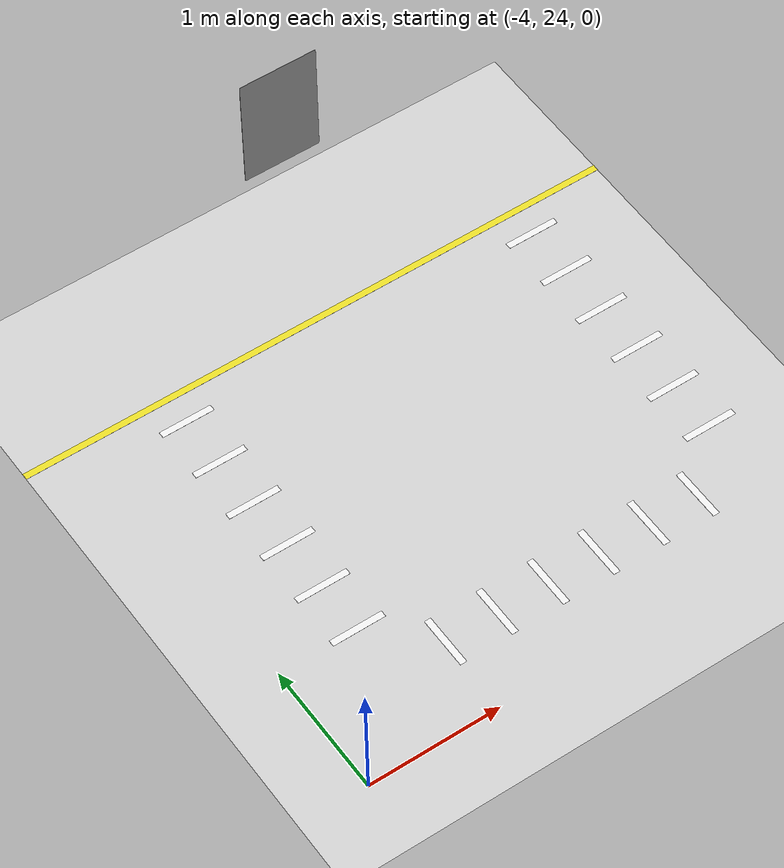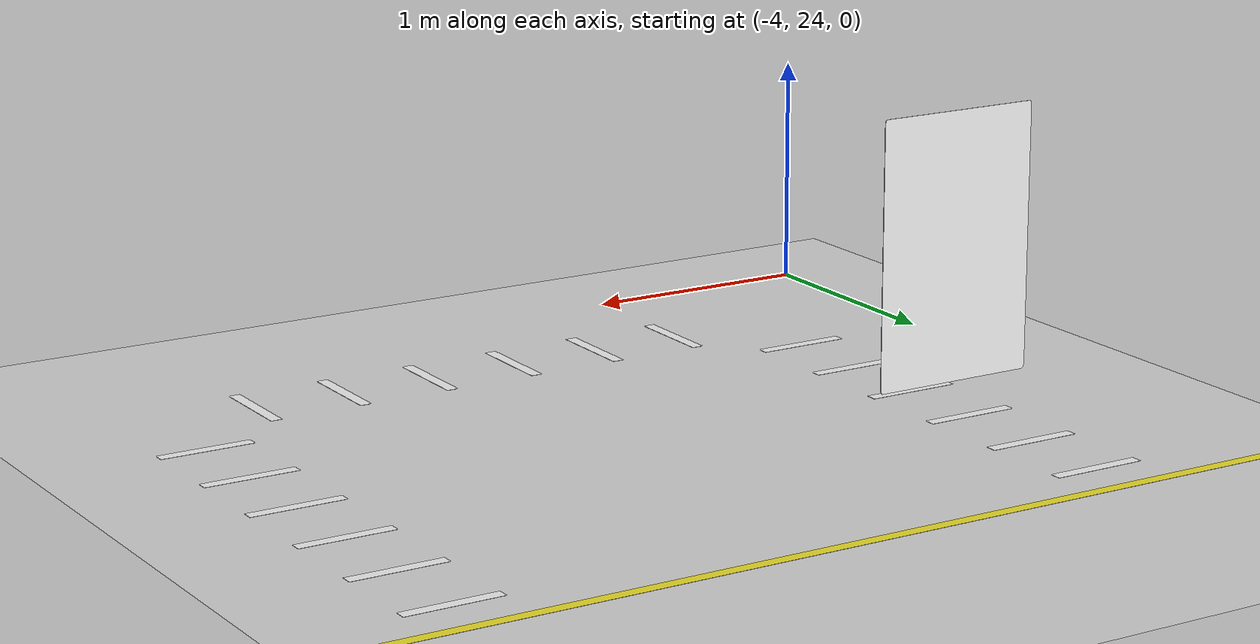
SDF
<sdf version="1.6">
 <world name="default">
  <model name="ground_plane">
   <static>1</static>
   <link name="link">
    <collision name="collision">
     <geometry><plane><normal>0 0 1</normal><size>100 100</size></plane></geometry>
     <surface><friction><ode><mu>100</mu><mu2>50</mu2></ode></friction></surface>
    </collision>
    <visual name="visual">
     <cast_shadows>0</cast_shadows>
     <geometry><plane><normal>0 0 1</normal><size>100 100</size></plane></geometry>
     <material>
      <script><uri>file://media/materials/scripts/gazebo.material</uri><name>Gazebo/Grey</name></script>
     </material>
    </visual>
   </link>
  </model>
  <model name="zebra_crossing_40cmx200cm_8">
   <link name="link_2">
    <inertial>
     <mass>1</mass>
     <inertia>
      <ixx>0.166667</ixx>
      <ixy>0</ixy>
      <ixz>0</ixz>
      <iyy>0.166667</iyy>
      <iyz>0</iyz>
      <izz>0.166667</izz>
     </inertia>
    </inertial>
    <visual name="ModelPreview_5::link_2::visual_1">
     <pose>-0.2 0 0 0 -0 0</pose>
     <geometry><box><size>0.05 0.4 0.001</size></box></geometry>
     <material>
      <lighting>1</lighting>
      <script><uri>file://media/materials/scripts/gazebo.material</uri><name>Gazebo/White</name></script>
     </material>
    </visual>
    <visual name="ModelPreview_5::link_2::visual_3">
     <pose>-0.6 0 0 0 -0 0</pose>
     <geometry><box><size>0.05 0.4 0.001</size></box></geometry>
     <material>
      <lighting>1</lighting>
      <script><uri>file://media/materials/scripts/gazebo.material</uri><name>Gazebo/White</name></script>
     </material>
    </visual>
    <visual name="ModelPreview_5::link_2::visual_4">
     <pose>1 0 0 0 -0 0</pose>
     <geometry><box><size>0.05 0.4 0.001</size></box></geometry>
     <material>
      <lighting>1</lighting>
      <script><uri>file://media/materials/scripts/gazebo.material</uri><name>Gazebo/White</name></script>
     </material>
    </visual>
    <visual name="visual">
     <pose>0.2 0 0 0 -0 0</pose>
     <geometry><box><size>0.05 0.4 0.001</size></box></geometry>
     <material>
      <lighting>1</lighting>
      <script><uri>file://media/materials/scripts/gazebo.material</uri><name>Gazebo/White</name></script>
     </material>
    </visual>
    <visual name="ModelPreview_5::link_2::visual_5">
     <pose>-1 0 0 0 -0 0</pose>
     <geometry><box><size>0.05 0.4 0.001</size></box></geometry>
     <material>
      <lighting>1</lighting>
      <script><uri>file://media/materials/scripts/gazebo.material</uri><name>Gazebo/White</name></script>
     </material>
    </visual>
    <visual name="ModelPreview_5::link_2::visual_2">
     <pose>0.6 0 0 0 -0 0</pose>
     <geometry><box><size>0.05 0.4 0.001</size></box></geometry>
     <material>
      <lighting>1</lighting>
      <script><uri>file://media/materials/scripts/gazebo.material</uri><name>Gazebo/White</name></script>
     </material>
    </visual>
    <collision name="collision_5">
     <pose>-1 0 0 0 -0 0</pose>
     <geometry><box><size>0.05 0.4 1e-05</size></box></geometry>
    </collision>
    <collision name="collision">
     <pose>0.2 0 0 0 -0 0</pose>
     <geometry><box><size>0.05 0.4 1e-05</size></box></geometry>
    </collision>
    <collision name="collision_3">
     <pose>-0.6 0 0 0 -0 0</pose>
     <geometry><box><size>0.05 0.4 1e-05</size></box></geometry>
    </collision>
    <collision name="collision_4">
     <pose>1 0 0 0 -0 0</pose>
     <geometry><box><size>0.05 0.4 1e-05</size></box></geometry>
    </collision>
    <collision name="collision_2">
     <pose>0.6 0 0 0 -0 0</pose>
     <geometry><box><size>0.05 0.4 1e-05</size></box></geometry>
    </collision>
    <collision name="collision_1">
     <pose>-0.2 0 0 0 -0 0</pose>
     <geometry><box><size>0.05 0.4 1e-05</size></box></geometry>
    </collision>
   </link>
   <static>1</static>
   <pose>-2 24.6 0 0 -0 0</pose>
  </model>
  <model name="zebra_crossing_40cmx200cm_14">
   <link name="link_2">
    <inertial>
     <mass>1</mass>
     <inertia>
      <ixx>0.166667</ixx>
      <ixy>0</ixy>
      <ixz>0</ixz>
      <iyy>0.166667</iyy>
      <iyz>0</iyz>
      <izz>0.166667</izz>
     </inertia>
    </inertial>
    <visual name="ModelPreview_5::link_2::visual_1">
     <pose>-0.2 0 0 0 -0 0</pose>
     <geometry><box><size>0.05 0.4 0.001</size></box></geometry>
     <material>
      <lighting>1</lighting>
      <script><uri>file://media/materials/scripts/gazebo.material</uri><name>Gazebo/White</name></script>
     </material>
    </visual>
    <visual name="ModelPreview_5::link_2::visual_3">
     <pose>-0.6 0 0 0 -0 0</pose>
     <geometry><box><size>0.05 0.4 0.001</size></box></geometry>
     <material>
      <lighting>1</lighting>
      <script><uri>file://media/materials/scripts/gazebo.material</uri><name>Gazebo/White</name></script>
     </material>
    </visual>
    <visual name="ModelPreview_5::link_2::visual_4">
     <pose>1 0 0 0 -0 0</pose>
     <geometry><box><size>0.05 0.4 0.001</size></box></geometry>
     <material>
      <lighting>1</lighting>
      <script><uri>file://media/materials/scripts/gazebo.material</uri><name>Gazebo/White</name></script>
     </material>
    </visual>
    <visual name="visual">
     <pose>0.2 0 0 0 -0 0</pose>
     <geometry><box><size>0.05 0.4 0.001</size></box></geometry>
     <material>
      <lighting>1</lighting>
      <script><uri>file://media/materials/scripts/gazebo.material</uri><name>Gazebo/White</name></script>
     </material>
    </visual>
    <visual name="ModelPreview_5::link_2::visual_5">
     <pose>-1 0 0 0 -0 0</pose>
     <geometry><box><size>0.05 0.4 0.001</size></box></geometry>
     <material>
      <lighting>1</lighting>
      <script><uri>file://media/materials/scripts/gazebo.material</uri><name>Gazebo/White</name></script>
     </material>
    </visual>
    <visual name="ModelPreview_5::link_2::visual_2">
     <pose>0.6 0 0 0 -0 0</pose>
     <geometry><box><size>0.05 0.4 0.001</size></box></geometry>
     <material>
      <lighting>1</lighting>
      <script><uri>file://media/materials/scripts/gazebo.material</uri><name>Gazebo/White</name></script>
     </material>
    </visual>
    <collision name="collision_5">
     <pose>-1 0 0 0 -0 0</pose>
     <geometry><box><size>0.05 0.4 1e-05</size></box></geometry>
    </collision>
    <collision name="collision">
     <pose>0.2 0 0 0 -0 0</pose>
     <geometry><box><size>0.05 0.4 1e-05</size></box></geometry>
    </collision>
    <collision name="collision_3">
     <pose>-0.6 0 0 0 -0 0</pose>
     <geometry><box><size>0.05 0.4 1e-05</size></box></geometry>
    </collision>
    <collision name="collision_4">
     <pose>1 0 0 0 -0 0</pose>
     <geometry><box><size>0.05 0.4 1e-05</size></box></geometry>
    </collision>
    <collision name="collision_2">
     <pose>0.6 0 0 0 -0 0</pose>
     <geometry><box><size>0.05 0.4 1e-05</size></box></geometry>
    </collision>
    <collision name="collision_1">
     <pose>-0.2 0 0 0 -0 0</pose>
     <geometry><box><size>0.05 0.4 1e-05</size></box></geometry>
    </collision>
   </link>
   <static>1</static>
   <pose>-0.6 26 0 0 -0 1.5708</pose>
  </model>
  <model name="zebra_crossing_40cmx200cm_15">
   <link name="link_2">
    <inertial>
     <mass>1</mass>
     <inertia>
      <ixx>0.166667</ixx>
      <ixy>0</ixy>
      <ixz>0</ixz>
      <iyy>0.166667</iyy>
      <iyz>0</iyz>
      <izz>0.166667</izz>
     </inertia>
    </inertial>
    <visual name="ModelPreview_5::link_2::visual_1">
     <pose>-0.2 0 0 0 -0 0</pose>
     <geometry><box><size>0.05 0.4 0.001</size></box></geometry>
     <material>
      <lighting>1</lighting>
      <script><uri>file://media/materials/scripts/gazebo.material</uri><name>Gazebo/White</name></script>
     </material>
    </visual>
    <visual name="ModelPreview_5::link_2::visual_3">
     <pose>-0.6 0 0 0 -0 0</pose>
     <geometry><box><size>0.05 0.4 0.001</size></box></geometry>
     <material>
      <lighting>1</lighting>
      <script><uri>file://media/materials/scripts/gazebo.material</uri><name>Gazebo/White</name></script>
     </material>
    </visual>
    <visual name="ModelPreview_5::link_2::visual_4">
     <pose>1 0 0 0 -0 0</pose>
     <geometry><box><size>0.05 0.4 0.001</size></box></geometry>
     <material>
      <lighting>1</lighting>
      <script><uri>file://media/materials/scripts/gazebo.material</uri><name>Gazebo/White</name></script>
     </material>
    </visual>
    <visual name="visual">
     <pose>0.2 0 0 0 -0 0</pose>
     <geometry><box><size>0.05 0.4 0.001</size></box></geometry>
     <material>
      <lighting>1</lighting>
      <script><uri>file://media/materials/scripts/gazebo.material</uri><name>Gazebo/White</name></script>
     </material>
    </visual>
    <visual name="ModelPreview_5::link_2::visual_5">
     <pose>-1 0 0 0 -0 0</pose>
     <geometry><box><size>0.05 0.4 0.001</size></box></geometry>
     <material>
      <lighting>1</lighting>
      <script><uri>file://media/materials/scripts/gazebo.material</uri><name>Gazebo/White</name></script>
     </material>
    </visual>
    <visual name="ModelPreview_5::link_2::visual_2">
     <pose>0.6 0 0 0 -0 0</pose>
     <geometry><box><size>0.05 0.4 0.001</size></box></geometry>
     <material>
      <lighting>1</lighting>
      <script><uri>file://media/materials/scripts/gazebo.material</uri><name>Gazebo/White</name></script>
     </material>
    </visual>
    <collision name="collision_5">
     <pose>-1 0 0 0 -0 0</pose>
     <geometry><box><size>0.05 0.4 1e-05</size></box></geometry>
    </collision>
    <collision name="collision">
     <pose>0.2 0 0 0 -0 0</pose>
     <geometry><box><size>0.05 0.4 1e-05</size></box></geometry>
    </collision>
    <collision name="collision_3">
     <pose>-0.6 0 0 0 -0 0</pose>
     <geometry><box><size>0.05 0.4 1e-05</size></box></geometry>
    </collision>
    <collision name="collision_4">
     <pose>1 0 0 0 -0 0</pose>
     <geometry><box><size>0.05 0.4 1e-05</size></box></geometry>
    </collision>
    <collision name="collision_2">
     <pose>0.6 0 0 0 -0 0</pose>
     <geometry><box><size>0.05 0.4 1e-05</size></box></geometry>
    </collision>
    <collision name="collision_1">
     <pose>-0.2 0 0 0 -0 0</pose>
     <geometry><box><size>0.05 0.4 1e-05</size></box></geometry>
    </collision>
   </link>
   <static>1</static>
   <pose>-3.4 26 0 0 -0 1.5708</pose>
  </model>
  <model name="line3640cm">
   <link name="link_4">
    <inertial>
     <mass>1</mass>
     <inertia>
      <ixx>0.166667</ixx>
      <ixy>0</ixy>
      <ixz>0</ixz>
      <iyy>0.166667</iyy>
      <iyz>0</iyz>
      <izz>0.166667</izz>
     </inertia>
    </inertial>
    <visual name="visual">
     <pose>0 0 0 0 -0 1.5708</pose>
     <geometry><box><size>0.05 36.4 0.001</size></box></geometry>
     <material>
      <lighting>1</lighting>
      <script><uri>file://media/materials/scripts/gazebo.material</uri><name>Gazebo/Yellow</name></script>
     </material>
    </visual>
    <collision name="collision">
     <pose>0 0 0 0 -0 1.5708</pose>
     <geometry><box><size>0.05 36.4 1e-05</size></box></geometry>
    </collision>
   </link>
   <static>1</static>
   <pose>-0.95 27.225 0 0 -0 0</pose>
  </model>
  <model name="120x90sign_sitesafety_0">
   <link name="link_0">
    <inertial>
     <mass>1</mass>
     <inertia>
      <ixx>0.166667</ixx>
      <ixy>0</ixy>
      <ixz>0</ixz>
      <iyy>0.166667</iyy>
      <iyz>0</iyz>
      <izz>0.166667</izz>
     </inertia>
    </inertial>
    <visual name="visual">
     <pose>-0.3 0 -0.45 0 -0 0</pose>
     <geometry>
      <mesh><uri>model://120x90sign_sitesafety/model/model.dae</uri><scale>2 1 4.4</scale></mesh>
     </geometry>
    </visual>
    <collision name="collision"><geometry><box><size>0.6 0.005 0.9</size></box></geometry></collision>
   </link>
   <static>1</static>
   <pose>-2 27.925 1.25 0 -0 0</pose>
  </model>
 </world>
</sdf>
